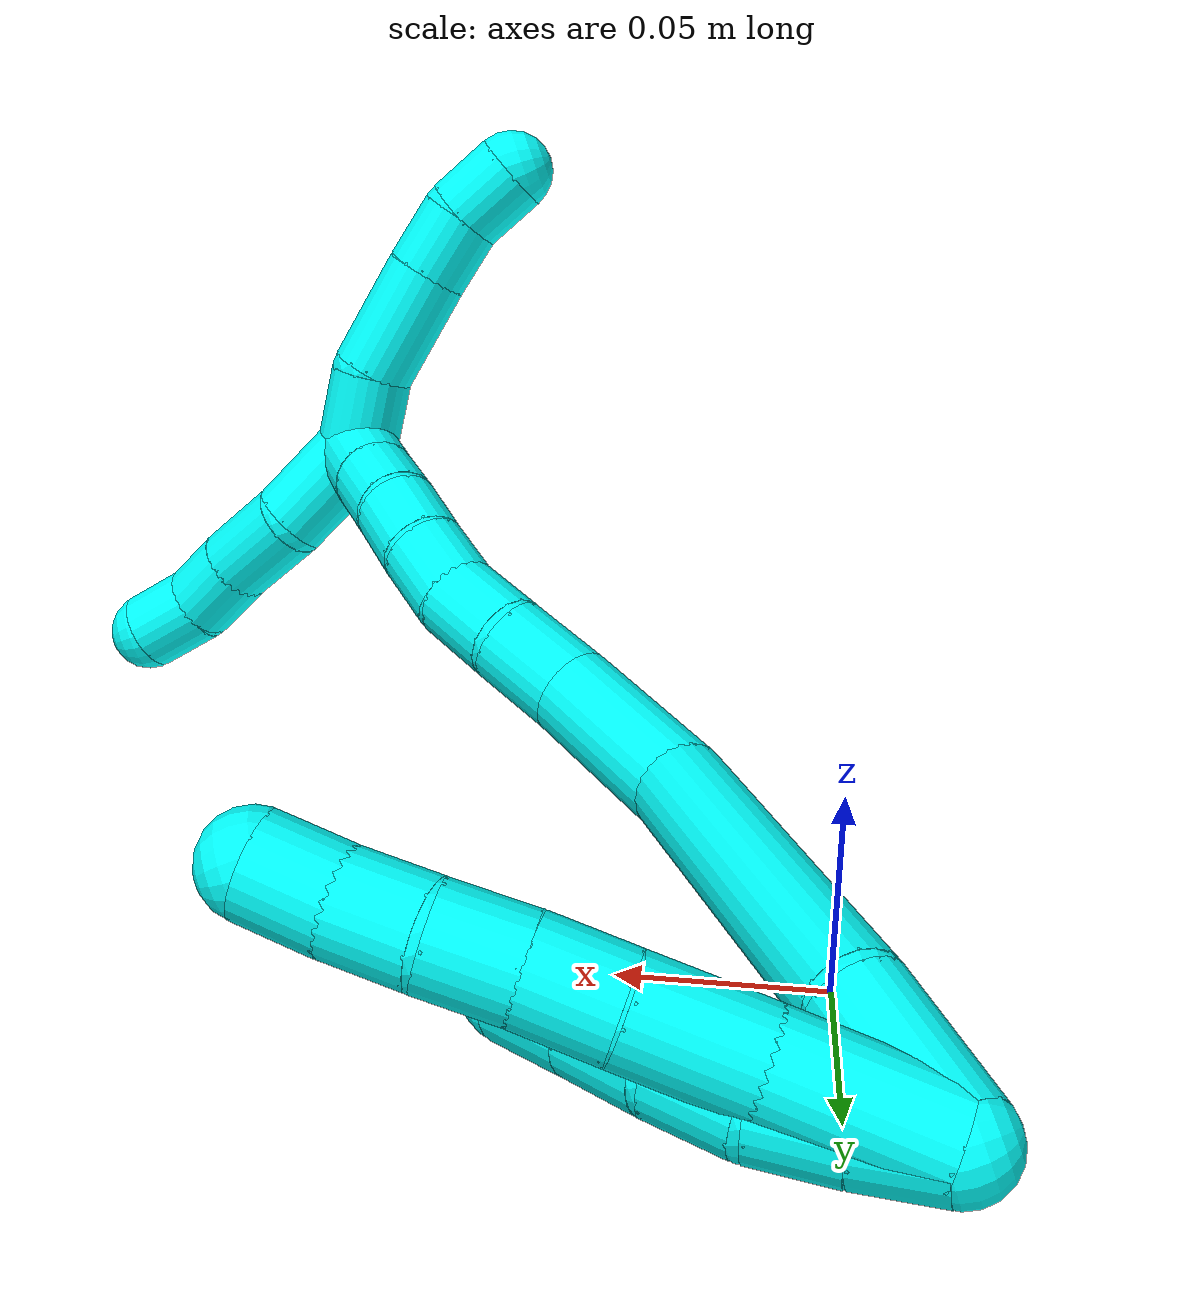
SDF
<sdf version="1.7">
 <world name="default">
  <model name="3">
   <static>0</static>
   <link name="3">
    <collision name="collision-cylinder-e_1_2_8">
     <pose>0.011997 0.00029 -0.015193 -3.12249 0.668336 -3.08659</pose>
     <geometry><cylinder><radius>0.0125</radius><length>0.038721</length></cylinder></geometry>
     <surface>
      <friction><ode><mu>1.16</mu><mu2>1.16</mu2><slip1>0</slip1><slip2>0</slip2></ode></friction>
      <contact><ode><kp>1e+06</kp><kd>1</kd><max_vel>0</max_vel><min_depth>0.001</min_depth></ode></contact>
     </surface>
    </collision>
    <visual name="visual-cylinder-e_1_2_8">
     <pose>0.011997 0.00029 -0.015193 -3.12249 0.668336 -3.08659</pose>
     <geometry><cylinder><radius>0.0125</radius><length>0.038721</length></cylinder></geometry>
     <material><ambient>0.003922 1 0.996078 1</ambient></material>
    </visual>
    <collision name="collision-cylinder-e_2_8_9">
     <pose>0.032949 0.002891 -0.041839 -2.94257 0.653869 -2.56891</pose>
     <geometry><cylinder><radius>0.0125</radius><length>0.029442</length></cylinder></geometry>
     <surface>
      <friction><ode><mu>1.16</mu><mu2>1.16</mu2><slip1>0</slip1><slip2>0</slip2></ode></friction>
      <contact><ode><kp>1e+06</kp><kd>1</kd><max_vel>0</max_vel><min_depth>0.001</min_depth></ode></contact>
     </surface>
    </collision>
    <visual name="visual-cylinder-e_2_8_9">
     <pose>0.032949 0.002891 -0.041839 -2.94257 0.653869 -2.56891</pose>
     <geometry><cylinder><radius>0.0125</radius><length>0.029442</length></cylinder></geometry>
     <material><ambient>0.003922 1 0.996078 1</ambient></material>
    </visual>
    <collision name="collision-cylinder-e_3_9_10">
     <pose>0.048375 0.00604 -0.061531 -3.0401 0.663365 -2.84877</pose>
     <geometry><cylinder><radius>0.0125</radius><length>0.021018</length></cylinder></geometry>
     <surface>
      <friction><ode><mu>1.16</mu><mu2>1.16</mu2><slip1>0</slip1><slip2>0</slip2></ode></friction>
      <contact><ode><kp>1e+06</kp><kd>1</kd><max_vel>0</max_vel><min_depth>0.001</min_depth></ode></contact>
     </surface>
    </collision>
    <visual name="visual-cylinder-e_3_9_10">
     <pose>0.048375 0.00604 -0.061531 -3.0401 0.663365 -2.84877</pose>
     <geometry><cylinder><radius>0.0125</radius><length>0.021018</length></cylinder></geometry>
     <material><ambient>0.003922 1 0.996078 1</ambient></material>
    </visual>
    <collision name="collision-cylinder-e_4_10_11">
     <pose>0.060824 0.008049 -0.078162 -3.00309 0.614356 -2.71106</pose>
     <geometry><cylinder><radius>0.0125</radius><length>0.020743</length></cylinder></geometry>
     <surface>
      <friction><ode><mu>1.16</mu><mu2>1.16</mu2><slip1>0</slip1><slip2>0</slip2></ode></friction>
      <contact><ode><kp>1e+06</kp><kd>1</kd><max_vel>0</max_vel><min_depth>0.001</min_depth></ode></contact>
     </surface>
    </collision>
    <visual name="visual-cylinder-e_4_10_11">
     <pose>0.060824 0.008049 -0.078162 -3.00309 0.614356 -2.71106</pose>
     <geometry><cylinder><radius>0.0125</radius><length>0.020743</length></cylinder></geometry>
     <material><ambient>0.003922 1 0.996078 1</ambient></material>
    </visual>
    <collision name="collision-cylinder-e_5_11_12">
     <pose>0.07271 0.008512 -0.094635 3.05427 0.6296 2.87485</pose>
     <geometry><cylinder><radius>0.0125</radius><length>0.020067</length></cylinder></geometry>
     <surface>
      <friction><ode><mu>1.16</mu><mu2>1.16</mu2><slip1>0</slip1><slip2>0</slip2></ode></friction>
      <contact><ode><kp>1e+06</kp><kd>1</kd><max_vel>0</max_vel><min_depth>0.001</min_depth></ode></contact>
     </surface>
    </collision>
    <visual name="visual-cylinder-e_5_11_12">
     <pose>0.07271 0.008512 -0.094635 3.05427 0.6296 2.87485</pose>
     <geometry><cylinder><radius>0.0125</radius><length>0.020067</length></cylinder></geometry>
     <material><ambient>0.003922 1 0.996078 1</ambient></material>
    </visual>
    <collision name="collision-cylinder-e_6_12_6">
     <pose>0.085038 0.008371 -0.110366 -3.06771 0.696671 -2.93874</pose>
     <geometry><cylinder><radius>0.0125</radius><length>0.020009</length></cylinder></geometry>
     <surface>
      <friction><ode><mu>1.16</mu><mu2>1.16</mu2><slip1>0</slip1><slip2>0</slip2></ode></friction>
      <contact><ode><kp>1e+06</kp><kd>1</kd><max_vel>0</max_vel><min_depth>0.001</min_depth></ode></contact>
     </surface>
    </collision>
    <visual name="visual-cylinder-e_6_12_6">
     <pose>0.085038 0.008371 -0.110366 -3.06771 0.696671 -2.93874</pose>
     <geometry><cylinder><radius>0.0125</radius><length>0.020009</length></cylinder></geometry>
     <material><ambient>0.003922 1 0.996078 1</ambient></material>
    </visual>
    <collision name="collision-cylinder-e_1_2_13">
     <pose>0.004065 -0.001686 -0.00898 2.95596 0.418608 2.31556</pose>
     <geometry><cylinder><radius>0.0125</radius><length>0.02</length></cylinder></geometry>
     <surface>
      <friction><ode><mu>1.16</mu><mu2>1.16</mu2><slip1>0</slip1><slip2>0</slip2></ode></friction>
      <contact><ode><kp>1e+06</kp><kd>1</kd><max_vel>0</max_vel><min_depth>0.001</min_depth></ode></contact>
     </surface>
    </collision>
    <visual name="visual-cylinder-e_1_2_13">
     <pose>0.004065 -0.001686 -0.00898 2.95596 0.418608 2.31556</pose>
     <geometry><cylinder><radius>0.0125</radius><length>0.02</length></cylinder></geometry>
     <material><ambient>0.003922 1 0.996078 1</ambient></material>
    </visual>
    <collision name="collision-cylinder-e_2_13_14">
     <pose>0.012893 -0.004429 -0.026688 3.02111 0.496512 2.67441</pose>
     <geometry><cylinder><radius>0.0125</radius><length>0.02</length></cylinder></geometry>
     <surface>
      <friction><ode><mu>1.16</mu><mu2>1.16</mu2><slip1>0</slip1><slip2>0</slip2></ode></friction>
      <contact><ode><kp>1e+06</kp><kd>1</kd><max_vel>0</max_vel><min_depth>0.001</min_depth></ode></contact>
     </surface>
    </collision>
    <visual name="visual-cylinder-e_2_13_14">
     <pose>0.012893 -0.004429 -0.026688 3.02111 0.496512 2.67441</pose>
     <geometry><cylinder><radius>0.0125</radius><length>0.02</length></cylinder></geometry>
     <material><ambient>0.003922 1 0.996078 1</ambient></material>
    </visual>
    <collision name="collision-cylinder-e_3_14_15">
     <pose>0.023839 -0.007631 -0.042979 2.86526 0.66639 2.37754</pose>
     <geometry><cylinder><radius>0.0125</radius><length>0.02</length></cylinder></geometry>
     <surface>
      <friction><ode><mu>1.16</mu><mu2>1.16</mu2><slip1>0</slip1><slip2>0</slip2></ode></friction>
      <contact><ode><kp>1e+06</kp><kd>1</kd><max_vel>0</max_vel><min_depth>0.001</min_depth></ode></contact>
     </surface>
    </collision>
    <visual name="visual-cylinder-e_3_14_15">
     <pose>0.023839 -0.007631 -0.042979 2.86526 0.66639 2.37754</pose>
     <geometry><cylinder><radius>0.0125</radius><length>0.02</length></cylinder></geometry>
     <material><ambient>0.003922 1 0.996078 1</ambient></material>
    </visual>
    <collision name="collision-cylinder-e_4_15_16">
     <pose>0.035879 -0.014071 -0.057413 2.58283 0.62598 1.69103</pose>
     <geometry><cylinder><radius>0.0125</radius><length>0.02</length></cylinder></geometry>
     <surface>
      <friction><ode><mu>1.16</mu><mu2>1.16</mu2><slip1>0</slip1><slip2>0</slip2></ode></friction>
      <contact><ode><kp>1e+06</kp><kd>1</kd><max_vel>0</max_vel><min_depth>0.001</min_depth></ode></contact>
     </surface>
    </collision>
    <visual name="visual-cylinder-e_4_15_16">
     <pose>0.035879 -0.014071 -0.057413 2.58283 0.62598 1.69103</pose>
     <geometry><cylinder><radius>0.0125</radius><length>0.02</length></cylinder></geometry>
     <material><ambient>0.003922 1 0.996078 1</ambient></material>
    </visual>
    <collision name="collision-cylinder-e_5_16_5">
     <pose>0.047419 -0.022834 -0.071196 2.56788 0.604253 1.62576</pose>
     <geometry><cylinder><radius>0.0125</radius><length>0.02</length></cylinder></geometry>
     <surface>
      <friction><ode><mu>1.16</mu><mu2>1.16</mu2><slip1>0</slip1><slip2>0</slip2></ode></friction>
      <contact><ode><kp>1e+06</kp><kd>1</kd><max_vel>0</max_vel><min_depth>0.001</min_depth></ode></contact>
     </surface>
    </collision>
    <visual name="visual-cylinder-e_5_16_5">
     <pose>0.047419 -0.022834 -0.071196 2.56788 0.604253 1.62576</pose>
     <geometry><cylinder><radius>0.0125</radius><length>0.02</length></cylinder></geometry>
     <material><ambient>0.003922 1 0.996078 1</ambient></material>
    </visual>
    <collision name="collision-cylinder-e_1_2_17">
     <pose>0.015148 -0.009609 -0.004755 2.03035 0.954874 1.38942</pose>
     <geometry><cylinder><radius>0.0125</radius><length>0.037117</length></cylinder></geometry>
     <surface>
      <friction><ode><mu>1.16</mu><mu2>1.16</mu2><slip1>0</slip1><slip2>0</slip2></ode></friction>
      <contact><ode><kp>1e+06</kp><kd>1</kd><max_vel>0</max_vel><min_depth>0.001</min_depth></ode></contact>
     </surface>
    </collision>
    <visual name="visual-cylinder-e_1_2_17">
     <pose>0.015148 -0.009609 -0.004755 2.03035 0.954874 1.38942</pose>
     <geometry><cylinder><radius>0.0125</radius><length>0.037117</length></cylinder></geometry>
     <material><ambient>0.003922 1 0.996078 1</ambient></material>
    </visual>
    <collision name="collision-cylinder-e_2_17_18">
     <pose>0.060104 -0.050477 -0.021106 1.92599 0.729515 1.004</pose>
     <geometry><cylinder><radius>0.0125</radius><length>0.089445</length></cylinder></geometry>
     <surface>
      <friction><ode><mu>1.16</mu><mu2>1.16</mu2><slip1>0</slip1><slip2>0</slip2></ode></friction>
      <contact><ode><kp>1e+06</kp><kd>1</kd><max_vel>0</max_vel><min_depth>0.001</min_depth></ode></contact>
     </surface>
    </collision>
    <visual name="visual-cylinder-e_2_17_18">
     <pose>0.060104 -0.050477 -0.021106 1.92599 0.729515 1.004</pose>
     <geometry><cylinder><radius>0.0125</radius><length>0.089445</length></cylinder></geometry>
     <material><ambient>0.003922 1 0.996078 1</ambient></material>
    </visual>
    <collision name="collision-cylinder-e_3_18_19">
     <pose>0.10752 -0.092912 -0.042678 2.29964 0.865835 1.60248</pose>
     <geometry><cylinder><radius>0.0125</radius><length>0.046237</length></cylinder></geometry>
     <surface>
      <friction><ode><mu>1.16</mu><mu2>1.16</mu2><slip1>0</slip1><slip2>0</slip2></ode></friction>
      <contact><ode><kp>1e+06</kp><kd>1</kd><max_vel>0</max_vel><min_depth>0.001</min_depth></ode></contact>
     </surface>
    </collision>
    <visual name="visual-cylinder-e_3_18_19">
     <pose>0.10752 -0.092912 -0.042678 2.29964 0.865835 1.60248</pose>
     <geometry><cylinder><radius>0.0125</radius><length>0.046237</length></cylinder></geometry>
     <material><ambient>0.003922 1 0.996078 1</ambient></material>
    </visual>
    <collision name="collision-cylinder-e_4_19_20">
     <pose>0.135292 -0.106255 -0.05914 2.81891 0.978655 2.54836</pose>
     <geometry><cylinder><radius>0.0125</radius><length>0.024499</length></cylinder></geometry>
     <surface>
      <friction><ode><mu>1.16</mu><mu2>1.16</mu2><slip1>0</slip1><slip2>0</slip2></ode></friction>
      <contact><ode><kp>1e+06</kp><kd>1</kd><max_vel>0</max_vel><min_depth>0.001</min_depth></ode></contact>
     </surface>
    </collision>
    <visual name="visual-cylinder-e_4_19_20">
     <pose>0.135292 -0.106255 -0.05914 2.81891 0.978655 2.54836</pose>
     <geometry><cylinder><radius>0.0125</radius><length>0.024499</length></cylinder></geometry>
     <material><ambient>0.003922 1 0.996078 1</ambient></material>
    </visual>
    <collision name="collision-cylinder-e_5_20_21">
     <pose>0.154399 -0.112748 -0.071116 2.47446 0.907333 1.90589</pose>
     <geometry><cylinder><radius>0.0125</radius><length>0.022702</length></cylinder></geometry>
     <surface>
      <friction><ode><mu>1.16</mu><mu2>1.16</mu2><slip1>0</slip1><slip2>0</slip2></ode></friction>
      <contact><ode><kp>1e+06</kp><kd>1</kd><max_vel>0</max_vel><min_depth>0.001</min_depth></ode></contact>
     </surface>
    </collision>
    <visual name="visual-cylinder-e_5_20_21">
     <pose>0.154399 -0.112748 -0.071116 2.47446 0.907333 1.90589</pose>
     <geometry><cylinder><radius>0.0125</radius><length>0.022702</length></cylinder></geometry>
     <material><ambient>0.003922 1 0.996078 1</ambient></material>
    </visual>
    <collision name="collision-cylinder-e_6_21_22">
     <pose>0.172369 -0.120095 -0.079672 2.36307 1.1259 1.98885</pose>
     <geometry><cylinder><radius>0.0125</radius><length>0.02</length></cylinder></geometry>
     <surface>
      <friction><ode><mu>1.16</mu><mu2>1.16</mu2><slip1>0</slip1><slip2>0</slip2></ode></friction>
      <contact><ode><kp>1e+06</kp><kd>1</kd><max_vel>0</max_vel><min_depth>0.001</min_depth></ode></contact>
     </surface>
    </collision>
    <visual name="visual-cylinder-e_6_21_22">
     <pose>0.172369 -0.120095 -0.079672 2.36307 1.1259 1.98885</pose>
     <geometry><cylinder><radius>0.0125</radius><length>0.02</length></cylinder></geometry>
     <material><ambient>0.003922 1 0.996078 1</ambient></material>
    </visual>
    <collision name="collision-cylinder-e_7_22_23">
     <pose>0.190002 -0.127468 -0.085379 2.11669 1.03669 1.58453</pose>
     <geometry><cylinder><radius>0.0125</radius><length>0.02</length></cylinder></geometry>
     <surface>
      <friction><ode><mu>1.16</mu><mu2>1.16</mu2><slip1>0</slip1><slip2>0</slip2></ode></friction>
      <contact><ode><kp>1e+06</kp><kd>1</kd><max_vel>0</max_vel><min_depth>0.001</min_depth></ode></contact>
     </surface>
    </collision>
    <visual name="visual-cylinder-e_7_22_23">
     <pose>0.190002 -0.127468 -0.085379 2.11669 1.03669 1.58453</pose>
     <geometry><cylinder><radius>0.0125</radius><length>0.02</length></cylinder></geometry>
     <material><ambient>0.003922 1 0.996078 1</ambient></material>
    </visual>
    <collision name="collision-cylinder-e_8_23_24">
     <pose>0.206218 -0.137721 -0.090721 1.99974 0.86462 1.24596</pose>
     <geometry><cylinder><radius>0.0125</radius><length>0.02</length></cylinder></geometry>
     <surface>
      <friction><ode><mu>1.16</mu><mu2>1.16</mu2><slip1>0</slip1><slip2>0</slip2></ode></friction>
      <contact><ode><kp>1e+06</kp><kd>1</kd><max_vel>0</max_vel><min_depth>0.001</min_depth></ode></contact>
     </surface>
    </collision>
    <visual name="visual-cylinder-e_8_23_24">
     <pose>0.206218 -0.137721 -0.090721 1.99974 0.86462 1.24596</pose>
     <geometry><cylinder><radius>0.0125</radius><length>0.02</length></cylinder></geometry>
     <material><ambient>0.003922 1 0.996078 1</ambient></material>
    </visual>
    <collision name="collision-cylinder-e_9_24_1">
     <pose>0.22142 -0.149678 -0.0958 1.94533 0.862286 1.18763</pose>
     <geometry><cylinder><radius>0.0125</radius><length>0.02</length></cylinder></geometry>
     <surface>
      <friction><ode><mu>1.16</mu><mu2>1.16</mu2><slip1>0</slip1><slip2>0</slip2></ode></friction>
      <contact><ode><kp>1e+06</kp><kd>1</kd><max_vel>0</max_vel><min_depth>0.001</min_depth></ode></contact>
     </surface>
    </collision>
    <visual name="visual-cylinder-e_9_24_1">
     <pose>0.22142 -0.149678 -0.0958 1.94533 0.862286 1.18763</pose>
     <geometry><cylinder><radius>0.0125</radius><length>0.02</length></cylinder></geometry>
     <material><ambient>0.003922 1 0.996078 1</ambient></material>
    </visual>
    <collision name="collision-cylinder-e_1_1_25">
     <pose>0.222959 -0.159257 -0.112153 2.89461 -0.397773 -2.03764</pose>
     <geometry><cylinder><radius>0.0125</radius><length>0.03126</length></cylinder></geometry>
     <surface>
      <friction><ode><mu>1.16</mu><mu2>1.16</mu2><slip1>0</slip1><slip2>0</slip2></ode></friction>
      <contact><ode><kp>1e+06</kp><kd>1</kd><max_vel>0</max_vel><min_depth>0.001</min_depth></ode></contact>
     </surface>
    </collision>
    <visual name="visual-cylinder-e_1_1_25">
     <pose>0.222959 -0.159257 -0.112153 2.89461 -0.397773 -2.03764</pose>
     <geometry><cylinder><radius>0.0125</radius><length>0.03126</length></cylinder></geometry>
     <material><ambient>0.003922 1 0.996078 1</ambient></material>
    </visual>
    <collision name="collision-cylinder-e_2_25_26">
     <pose>0.214734 -0.169173 -0.138016 2.64827 -0.15941 -0.614368</pose>
     <geometry><cylinder><radius>0.0125</radius><length>0.027347</length></cylinder></geometry>
     <surface>
      <friction><ode><mu>1.16</mu><mu2>1.16</mu2><slip1>0</slip1><slip2>0</slip2></ode></friction>
      <contact><ode><kp>1e+06</kp><kd>1</kd><max_vel>0</max_vel><min_depth>0.001</min_depth></ode></contact>
     </surface>
    </collision>
    <visual name="visual-cylinder-e_2_25_26">
     <pose>0.214734 -0.169173 -0.138016 2.64827 -0.15941 -0.614368</pose>
     <geometry><cylinder><radius>0.0125</radius><length>0.027347</length></cylinder></geometry>
     <material><ambient>0.003922 1 0.996078 1</ambient></material>
    </visual>
    <collision name="collision-cylinder-e_3_26_27">
     <pose>0.209801 -0.180044 -0.158757 2.67317 -0.271565 -1.04009</pose>
     <geometry><cylinder><radius>0.0125</radius><length>0.020591</length></cylinder></geometry>
     <surface>
      <friction><ode><mu>1.16</mu><mu2>1.16</mu2><slip1>0</slip1><slip2>0</slip2></ode></friction>
      <contact><ode><kp>1e+06</kp><kd>1</kd><max_vel>0</max_vel><min_depth>0.001</min_depth></ode></contact>
     </surface>
    </collision>
    <visual name="visual-cylinder-e_3_26_27">
     <pose>0.209801 -0.180044 -0.158757 2.67317 -0.271565 -1.04009</pose>
     <geometry><cylinder><radius>0.0125</radius><length>0.020591</length></cylinder></geometry>
     <material><ambient>0.003922 1 0.996078 1</ambient></material>
    </visual>
    <collision name="collision-cylinder-e_4_27_4">
     <pose>0.205927 -0.186819 -0.177689 2.91759 -0.107178 -0.890047</pose>
     <geometry><cylinder><radius>0.0125</radius><length>0.020801</length></cylinder></geometry>
     <surface>
      <friction><ode><mu>1.16</mu><mu2>1.16</mu2><slip1>0</slip1><slip2>0</slip2></ode></friction>
      <contact><ode><kp>1e+06</kp><kd>1</kd><max_vel>0</max_vel><min_depth>0.001</min_depth></ode></contact>
     </surface>
    </collision>
    <visual name="visual-cylinder-e_4_27_4">
     <pose>0.205927 -0.186819 -0.177689 2.91759 -0.107178 -0.890047</pose>
     <geometry><cylinder><radius>0.0125</radius><length>0.020801</length></cylinder></geometry>
     <material><ambient>0.003922 1 0.996078 1</ambient></material>
    </visual>
    <collision name="collision-cylinder-e_1_1_28">
     <pose>0.2382 -0.150396 -0.091636 -0.684209 0.827404 -0.310179</pose>
     <geometry><cylinder><radius>0.0125</radius><length>0.024957</length></cylinder></geometry>
     <surface>
      <friction><ode><mu>1.16</mu><mu2>1.16</mu2><slip1>0</slip1><slip2>0</slip2></ode></friction>
      <contact><ode><kp>1e+06</kp><kd>1</kd><max_vel>0</max_vel><min_depth>0.001</min_depth></ode></contact>
     </surface>
    </collision>
    <visual name="visual-cylinder-e_1_1_28">
     <pose>0.2382 -0.150396 -0.091636 -0.684209 0.827404 -0.310179</pose>
     <geometry><cylinder><radius>0.0125</radius><length>0.024957</length></cylinder></geometry>
     <material><ambient>0.003922 1 0.996078 1</ambient></material>
    </visual>
    <collision name="collision-cylinder-e_2_28_29">
     <pose>0.257577 -0.140051 -0.071926 -0.36342 0.626344 -0.118858</pose>
     <geometry><cylinder><radius>0.0125</radius><length>0.034771</length></cylinder></geometry>
     <surface>
      <friction><ode><mu>1.16</mu><mu2>1.16</mu2><slip1>0</slip1><slip2>0</slip2></ode></friction>
      <contact><ode><kp>1e+06</kp><kd>1</kd><max_vel>0</max_vel><min_depth>0.001</min_depth></ode></contact>
     </surface>
    </collision>
    <visual name="visual-cylinder-e_2_28_29">
     <pose>0.257577 -0.140051 -0.071926 -0.36342 0.626344 -0.118858</pose>
     <geometry><cylinder><radius>0.0125</radius><length>0.034771</length></cylinder></geometry>
     <material><ambient>0.003922 1 0.996078 1</ambient></material>
    </visual>
    <collision name="collision-cylinder-e_3_29_30">
     <pose>0.273301 -0.132129 -0.050808 -0.351343 0.578593 -0.105567</pose>
     <geometry><cylinder><radius>0.0125</radius><length>0.020235</length></cylinder></geometry>
     <surface>
      <friction><ode><mu>1.16</mu><mu2>1.16</mu2><slip1>0</slip1><slip2>0</slip2></ode></friction>
      <contact><ode><kp>1e+06</kp><kd>1</kd><max_vel>0</max_vel><min_depth>0.001</min_depth></ode></contact>
     </surface>
    </collision>
    <visual name="visual-cylinder-e_3_29_30">
     <pose>0.273301 -0.132129 -0.050808 -0.351343 0.578593 -0.105567</pose>
     <geometry><cylinder><radius>0.0125</radius><length>0.020235</length></cylinder></geometry>
     <material><ambient>0.003922 1 0.996078 1</ambient></material>
    </visual>
    <collision name="collision-cylinder-e_4_30_3">
     <pose>0.281987 -0.127259 -0.033548 -0.206979 0.320201 -0.03354</pose>
     <geometry><cylinder><radius>0.0125</radius><length>0.020037</length></cylinder></geometry>
     <surface>
      <friction><ode><mu>1.16</mu><mu2>1.16</mu2><slip1>0</slip1><slip2>0</slip2></ode></friction>
      <contact><ode><kp>1e+06</kp><kd>1</kd><max_vel>0</max_vel><min_depth>0.001</min_depth></ode></contact>
     </surface>
    </collision>
    <visual name="visual-cylinder-e_4_30_3">
     <pose>0.281987 -0.127259 -0.033548 -0.206979 0.320201 -0.03354</pose>
     <geometry><cylinder><radius>0.0125</radius><length>0.020037</length></cylinder></geometry>
     <material><ambient>0.003922 1 0.996078 1</ambient></material>
    </visual>
    <collision name="collision-sphere-3">
     <pose>0.285141 -0.125305 -0.024242 0 -0 0</pose>
     <geometry><sphere><radius>0.0125</radius></sphere></geometry>
     <surface>
      <friction><ode><mu>1.16</mu><mu2>1.16</mu2><slip1>0</slip1><slip2>0</slip2></ode></friction>
      <contact><ode><kp>1e+06</kp><kd>1</kd><max_vel>0</max_vel><min_depth>0.001</min_depth></ode></contact>
     </surface>
    </collision>
    <visual name="visual-sphere-3">
     <pose>0.285141 -0.125305 -0.024242 0 -0 0</pose>
     <geometry><sphere><radius>0.0125</radius></sphere></geometry>
     <material><ambient>0.003922 1 0.996078 1</ambient></material>
    </visual>
    <collision name="collision-sphere-30">
     <pose>0.278834 -0.129213 -0.042854 0 -0 0</pose>
     <geometry><sphere><radius>0.0125</radius></sphere></geometry>
     <surface>
      <friction><ode><mu>1.16</mu><mu2>1.16</mu2><slip1>0</slip1><slip2>0</slip2></ode></friction>
      <contact><ode><kp>1e+06</kp><kd>1</kd><max_vel>0</max_vel><min_depth>0.001</min_depth></ode></contact>
     </surface>
    </collision>
    <visual name="visual-sphere-30">
     <pose>0.278834 -0.129213 -0.042854 0 -0 0</pose>
     <geometry><sphere><radius>0.0125</radius></sphere></geometry>
     <material><ambient>0.003922 1 0.996078 1</ambient></material>
    </visual>
    <collision name="collision-sphere-29">
     <pose>0.267768 -0.135044 -0.058761 0 -0 0</pose>
     <geometry><sphere><radius>0.0125</radius></sphere></geometry>
     <surface>
      <friction><ode><mu>1.16</mu><mu2>1.16</mu2><slip1>0</slip1><slip2>0</slip2></ode></friction>
      <contact><ode><kp>1e+06</kp><kd>1</kd><max_vel>0</max_vel><min_depth>0.001</min_depth></ode></contact>
     </surface>
    </collision>
    <visual name="visual-sphere-29">
     <pose>0.267768 -0.135044 -0.058761 0 -0 0</pose>
     <geometry><sphere><radius>0.0125</radius></sphere></geometry>
     <material><ambient>0.003922 1 0.996078 1</ambient></material>
    </visual>
    <collision name="collision-sphere-28">
     <pose>0.247386 -0.145058 -0.085092 0 -0 0</pose>
     <geometry><sphere><radius>0.0125</radius></sphere></geometry>
     <surface>
      <friction><ode><mu>1.16</mu><mu2>1.16</mu2><slip1>0</slip1><slip2>0</slip2></ode></friction>
      <contact><ode><kp>1e+06</kp><kd>1</kd><max_vel>0</max_vel><min_depth>0.001</min_depth></ode></contact>
     </surface>
    </collision>
    <visual name="visual-sphere-28">
     <pose>0.247386 -0.145058 -0.085092 0 -0 0</pose>
     <geometry><sphere><radius>0.0125</radius></sphere></geometry>
     <material><ambient>0.003922 1 0.996078 1</ambient></material>
    </visual>
    <collision name="collision-sphere-4">
     <pose>0.204815 -0.189116 -0.187772 0 -0 0</pose>
     <geometry><sphere><radius>0.0125</radius></sphere></geometry>
     <surface>
      <friction><ode><mu>1.16</mu><mu2>1.16</mu2><slip1>0</slip1><slip2>0</slip2></ode></friction>
      <contact><ode><kp>1e+06</kp><kd>1</kd><max_vel>0</max_vel><min_depth>0.001</min_depth></ode></contact>
     </surface>
    </collision>
    <visual name="visual-sphere-4">
     <pose>0.204815 -0.189116 -0.187772 0 -0 0</pose>
     <geometry><sphere><radius>0.0125</radius></sphere></geometry>
     <material><ambient>0.003922 1 0.996078 1</ambient></material>
    </visual>
    <collision name="collision-sphere-27">
     <pose>0.20704 -0.184522 -0.167607 0 -0 0</pose>
     <geometry><sphere><radius>0.0125</radius></sphere></geometry>
     <surface>
      <friction><ode><mu>1.16</mu><mu2>1.16</mu2><slip1>0</slip1><slip2>0</slip2></ode></friction>
      <contact><ode><kp>1e+06</kp><kd>1</kd><max_vel>0</max_vel><min_depth>0.001</min_depth></ode></contact>
     </surface>
    </collision>
    <visual name="visual-sphere-27">
     <pose>0.20704 -0.184522 -0.167607 0 -0 0</pose>
     <geometry><sphere><radius>0.0125</radius></sphere></geometry>
     <material><ambient>0.003922 1 0.996078 1</ambient></material>
    </visual>
    <collision name="collision-sphere-26">
     <pose>0.212563 -0.175566 -0.149907 0 -0 0</pose>
     <geometry><sphere><radius>0.0125</radius></sphere></geometry>
     <surface>
      <friction><ode><mu>1.16</mu><mu2>1.16</mu2><slip1>0</slip1><slip2>0</slip2></ode></friction>
      <contact><ode><kp>1e+06</kp><kd>1</kd><max_vel>0</max_vel><min_depth>0.001</min_depth></ode></contact>
     </surface>
    </collision>
    <visual name="visual-sphere-26">
     <pose>0.212563 -0.175566 -0.149907 0 -0 0</pose>
     <geometry><sphere><radius>0.0125</radius></sphere></geometry>
     <material><ambient>0.003922 1 0.996078 1</ambient></material>
    </visual>
    <collision name="collision-sphere-25">
     <pose>0.216904 -0.16278 -0.126126 0 -0 0</pose>
     <geometry><sphere><radius>0.0125</radius></sphere></geometry>
     <surface>
      <friction><ode><mu>1.16</mu><mu2>1.16</mu2><slip1>0</slip1><slip2>0</slip2></ode></friction>
      <contact><ode><kp>1e+06</kp><kd>1</kd><max_vel>0</max_vel><min_depth>0.001</min_depth></ode></contact>
     </surface>
    </collision>
    <visual name="visual-sphere-25">
     <pose>0.216904 -0.16278 -0.126126 0 -0 0</pose>
     <geometry><sphere><radius>0.0125</radius></sphere></geometry>
     <material><ambient>0.003922 1 0.996078 1</ambient></material>
    </visual>
    <collision name="collision-sphere-1">
     <pose>0.229013 -0.155734 -0.098181 0 -0 0</pose>
     <geometry><sphere><radius>0.0125</radius></sphere></geometry>
     <surface>
      <friction><ode><mu>1.16</mu><mu2>1.16</mu2><slip1>0</slip1><slip2>0</slip2></ode></friction>
      <contact><ode><kp>1e+06</kp><kd>1</kd><max_vel>0</max_vel><min_depth>0.001</min_depth></ode></contact>
     </surface>
    </collision>
    <visual name="visual-sphere-1">
     <pose>0.229013 -0.155734 -0.098181 0 -0 0</pose>
     <geometry><sphere><radius>0.0125</radius></sphere></geometry>
     <material><ambient>0.003922 1 0.996078 1</ambient></material>
    </visual>
    <collision name="collision-sphere-24">
     <pose>0.213827 -0.143622 -0.09342 0 -0 0</pose>
     <geometry><sphere><radius>0.0125</radius></sphere></geometry>
     <surface>
      <friction><ode><mu>1.16</mu><mu2>1.16</mu2><slip1>0</slip1><slip2>0</slip2></ode></friction>
      <contact><ode><kp>1e+06</kp><kd>1</kd><max_vel>0</max_vel><min_depth>0.001</min_depth></ode></contact>
     </surface>
    </collision>
    <visual name="visual-sphere-24">
     <pose>0.213827 -0.143622 -0.09342 0 -0 0</pose>
     <geometry><sphere><radius>0.0125</radius></sphere></geometry>
     <material><ambient>0.003922 1 0.996078 1</ambient></material>
    </visual>
    <collision name="collision-sphere-23">
     <pose>0.19861 -0.131819 -0.088022 0 -0 0</pose>
     <geometry><sphere><radius>0.0125</radius></sphere></geometry>
     <surface>
      <friction><ode><mu>1.16</mu><mu2>1.16</mu2><slip1>0</slip1><slip2>0</slip2></ode></friction>
      <contact><ode><kp>1e+06</kp><kd>1</kd><max_vel>0</max_vel><min_depth>0.001</min_depth></ode></contact>
     </surface>
    </collision>
    <visual name="visual-sphere-23">
     <pose>0.19861 -0.131819 -0.088022 0 -0 0</pose>
     <geometry><sphere><radius>0.0125</radius></sphere></geometry>
     <material><ambient>0.003922 1 0.996078 1</ambient></material>
    </visual>
    <collision name="collision-sphere-22">
     <pose>0.181395 -0.123118 -0.082736 0 -0 0</pose>
     <geometry><sphere><radius>0.0125</radius></sphere></geometry>
     <surface>
      <friction><ode><mu>1.16</mu><mu2>1.16</mu2><slip1>0</slip1><slip2>0</slip2></ode></friction>
      <contact><ode><kp>1e+06</kp><kd>1</kd><max_vel>0</max_vel><min_depth>0.001</min_depth></ode></contact>
     </surface>
    </collision>
    <visual name="visual-sphere-22">
     <pose>0.181395 -0.123118 -0.082736 0 -0 0</pose>
     <geometry><sphere><radius>0.0125</radius></sphere></geometry>
     <material><ambient>0.003922 1 0.996078 1</ambient></material>
    </visual>
    <collision name="collision-sphere-21">
     <pose>0.163342 -0.117073 -0.076608 0 -0 0</pose>
     <geometry><sphere><radius>0.0125</radius></sphere></geometry>
     <surface>
      <friction><ode><mu>1.16</mu><mu2>1.16</mu2><slip1>0</slip1><slip2>0</slip2></ode></friction>
      <contact><ode><kp>1e+06</kp><kd>1</kd><max_vel>0</max_vel><min_depth>0.001</min_depth></ode></contact>
     </surface>
    </collision>
    <visual name="visual-sphere-21">
     <pose>0.163342 -0.117073 -0.076608 0 -0 0</pose>
     <geometry><sphere><radius>0.0125</radius></sphere></geometry>
     <material><ambient>0.003922 1 0.996078 1</ambient></material>
    </visual>
    <collision name="collision-sphere-12">
     <pose>0.078618 0.007804 -0.102714 0 -0 0</pose>
     <geometry><sphere><radius>0.0125</radius></sphere></geometry>
     <surface>
      <friction><ode><mu>1.16</mu><mu2>1.16</mu2><slip1>0</slip1><slip2>0</slip2></ode></friction>
      <contact><ode><kp>1e+06</kp><kd>1</kd><max_vel>0</max_vel><min_depth>0.001</min_depth></ode></contact>
     </surface>
    </collision>
    <visual name="visual-sphere-12">
     <pose>0.078618 0.007804 -0.102714 0 -0 0</pose>
     <geometry><sphere><radius>0.0125</radius></sphere></geometry>
     <material><ambient>0.003922 1 0.996078 1</ambient></material>
    </visual>
    <collision name="collision-sphere-11">
     <pose>0.066802 0.009219 -0.086556 0 -0 0</pose>
     <geometry><sphere><radius>0.0125</radius></sphere></geometry>
     <surface>
      <friction><ode><mu>1.16</mu><mu2>1.16</mu2><slip1>0</slip1><slip2>0</slip2></ode></friction>
      <contact><ode><kp>1e+06</kp><kd>1</kd><max_vel>0</max_vel><min_depth>0.001</min_depth></ode></contact>
     </surface>
    </collision>
    <visual name="visual-sphere-11">
     <pose>0.066802 0.009219 -0.086556 0 -0 0</pose>
     <geometry><sphere><radius>0.0125</radius></sphere></geometry>
     <material><ambient>0.003922 1 0.996078 1</ambient></material>
    </visual>
    <collision name="collision-sphere-10">
     <pose>0.054846 0.006879 -0.069768 0 -0 0</pose>
     <geometry><sphere><radius>0.0125</radius></sphere></geometry>
     <surface>
      <friction><ode><mu>1.16</mu><mu2>1.16</mu2><slip1>0</slip1><slip2>0</slip2></ode></friction>
      <contact><ode><kp>1e+06</kp><kd>1</kd><max_vel>0</max_vel><min_depth>0.001</min_depth></ode></contact>
     </surface>
    </collision>
    <visual name="visual-sphere-10">
     <pose>0.054846 0.006879 -0.069768 0 -0 0</pose>
     <geometry><sphere><radius>0.0125</radius></sphere></geometry>
     <material><ambient>0.003922 1 0.996078 1</ambient></material>
    </visual>
    <collision name="collision-sphere-9">
     <pose>0.041903 0.005201 -0.053293 0 -0 0</pose>
     <geometry><sphere><radius>0.0125</radius></sphere></geometry>
     <surface>
      <friction><ode><mu>1.16</mu><mu2>1.16</mu2><slip1>0</slip1><slip2>0</slip2></ode></friction>
      <contact><ode><kp>1e+06</kp><kd>1</kd><max_vel>0</max_vel><min_depth>0.001</min_depth></ode></contact>
     </surface>
    </collision>
    <visual name="visual-sphere-9">
     <pose>0.041903 0.005201 -0.053293 0 -0 0</pose>
     <geometry><sphere><radius>0.0125</radius></sphere></geometry>
     <material><ambient>0.003922 1 0.996078 1</ambient></material>
    </visual>
    <collision name="collision-sphere-2">
     <geometry><sphere><radius>0.0125</radius></sphere></geometry>
     <surface>
      <friction><ode><mu>1.16</mu><mu2>1.16</mu2><slip1>0</slip1><slip2>0</slip2></ode></friction>
      <contact><ode><kp>1e+06</kp><kd>1</kd><max_vel>0</max_vel><min_depth>0.001</min_depth></ode></contact>
     </surface>
    </collision>
    <visual name="visual-sphere-2">
     <geometry><sphere><radius>0.0125</radius></sphere></geometry>
     <material><ambient>0.003922 1 0.996078 1</ambient></material>
    </visual>
    <collision name="collision-sphere-19">
     <pose>0.125128 -0.104087 -0.052656 0 -0 0</pose>
     <geometry><sphere><radius>0.0125</radius></sphere></geometry>
     <surface>
      <friction><ode><mu>1.16</mu><mu2>1.16</mu2><slip1>0</slip1><slip2>0</slip2></ode></friction>
      <contact><ode><kp>1e+06</kp><kd>1</kd><max_vel>0</max_vel><min_depth>0.001</min_depth></ode></contact>
     </surface>
    </collision>
    <visual name="visual-sphere-19">
     <pose>0.125128 -0.104087 -0.052656 0 -0 0</pose>
     <geometry><sphere><radius>0.0125</radius></sphere></geometry>
     <material><ambient>0.003922 1 0.996078 1</ambient></material>
    </visual>
    <collision name="collision-sphere-8">
     <pose>0.023995 0.00058 -0.030385 0 -0 0</pose>
     <geometry><sphere><radius>0.0125</radius></sphere></geometry>
     <surface>
      <friction><ode><mu>1.16</mu><mu2>1.16</mu2><slip1>0</slip1><slip2>0</slip2></ode></friction>
      <contact><ode><kp>1e+06</kp><kd>1</kd><max_vel>0</max_vel><min_depth>0.001</min_depth></ode></contact>
     </surface>
    </collision>
    <visual name="visual-sphere-8">
     <pose>0.023995 0.00058 -0.030385 0 -0 0</pose>
     <geometry><sphere><radius>0.0125</radius></sphere></geometry>
     <material><ambient>0.003922 1 0.996078 1</ambient></material>
    </visual>
    <collision name="collision-sphere-6">
     <pose>0.091457 0.008937 -0.118018 0 -0 0</pose>
     <geometry><sphere><radius>0.0125</radius></sphere></geometry>
     <surface>
      <friction><ode><mu>1.16</mu><mu2>1.16</mu2><slip1>0</slip1><slip2>0</slip2></ode></friction>
      <contact><ode><kp>1e+06</kp><kd>1</kd><max_vel>0</max_vel><min_depth>0.001</min_depth></ode></contact>
     </surface>
    </collision>
    <visual name="visual-sphere-6">
     <pose>0.091457 0.008937 -0.118018 0 -0 0</pose>
     <geometry><sphere><radius>0.0125</radius></sphere></geometry>
     <material><ambient>0.003922 1 0.996078 1</ambient></material>
    </visual>
    <collision name="collision-sphere-13">
     <pose>0.00813 -0.003373 -0.017959 0 -0 0</pose>
     <geometry><sphere><radius>0.0125</radius></sphere></geometry>
     <surface>
      <friction><ode><mu>1.16</mu><mu2>1.16</mu2><slip1>0</slip1><slip2>0</slip2></ode></friction>
      <contact><ode><kp>1e+06</kp><kd>1</kd><max_vel>0</max_vel><min_depth>0.001</min_depth></ode></contact>
     </surface>
    </collision>
    <visual name="visual-sphere-13">
     <pose>0.00813 -0.003373 -0.017959 0 -0 0</pose>
     <geometry><sphere><radius>0.0125</radius></sphere></geometry>
     <material><ambient>0.003922 1 0.996078 1</ambient></material>
    </visual>
    <collision name="collision-sphere-14">
     <pose>0.017657 -0.005486 -0.035417 0 -0 0</pose>
     <geometry><sphere><radius>0.0125</radius></sphere></geometry>
     <surface>
      <friction><ode><mu>1.16</mu><mu2>1.16</mu2><slip1>0</slip1><slip2>0</slip2></ode></friction>
      <contact><ode><kp>1e+06</kp><kd>1</kd><max_vel>0</max_vel><min_depth>0.001</min_depth></ode></contact>
     </surface>
    </collision>
    <visual name="visual-sphere-14">
     <pose>0.017657 -0.005486 -0.035417 0 -0 0</pose>
     <geometry><sphere><radius>0.0125</radius></sphere></geometry>
     <material><ambient>0.003922 1 0.996078 1</ambient></material>
    </visual>
    <collision name="collision-sphere-15">
     <pose>0.03002 -0.009775 -0.050541 0 -0 0</pose>
     <geometry><sphere><radius>0.0125</radius></sphere></geometry>
     <surface>
      <friction><ode><mu>1.16</mu><mu2>1.16</mu2><slip1>0</slip1><slip2>0</slip2></ode></friction>
      <contact><ode><kp>1e+06</kp><kd>1</kd><max_vel>0</max_vel><min_depth>0.001</min_depth></ode></contact>
     </surface>
    </collision>
    <visual name="visual-sphere-15">
     <pose>0.03002 -0.009775 -0.050541 0 -0 0</pose>
     <geometry><sphere><radius>0.0125</radius></sphere></geometry>
     <material><ambient>0.003922 1 0.996078 1</ambient></material>
    </visual>
    <collision name="collision-sphere-16">
     <pose>0.041738 -0.018368 -0.064284 0 -0 0</pose>
     <geometry><sphere><radius>0.0125</radius></sphere></geometry>
     <surface>
      <friction><ode><mu>1.16</mu><mu2>1.16</mu2><slip1>0</slip1><slip2>0</slip2></ode></friction>
      <contact><ode><kp>1e+06</kp><kd>1</kd><max_vel>0</max_vel><min_depth>0.001</min_depth></ode></contact>
     </surface>
    </collision>
    <visual name="visual-sphere-16">
     <pose>0.041738 -0.018368 -0.064284 0 -0 0</pose>
     <geometry><sphere><radius>0.0125</radius></sphere></geometry>
     <material><ambient>0.003922 1 0.996078 1</ambient></material>
    </visual>
    <collision name="collision-sphere-5">
     <pose>0.053101 -0.0273 -0.078108 0 -0 0</pose>
     <geometry><sphere><radius>0.0125</radius></sphere></geometry>
     <surface>
      <friction><ode><mu>1.16</mu><mu2>1.16</mu2><slip1>0</slip1><slip2>0</slip2></ode></friction>
      <contact><ode><kp>1e+06</kp><kd>1</kd><max_vel>0</max_vel><min_depth>0.001</min_depth></ode></contact>
     </surface>
    </collision>
    <visual name="visual-sphere-5">
     <pose>0.053101 -0.0273 -0.078108 0 -0 0</pose>
     <geometry><sphere><radius>0.0125</radius></sphere></geometry>
     <material><ambient>0.003922 1 0.996078 1</ambient></material>
    </visual>
    <collision name="collision-sphere-17">
     <pose>0.030296 -0.019218 -0.009511 0 -0 0</pose>
     <geometry><sphere><radius>0.0125</radius></sphere></geometry>
     <surface>
      <friction><ode><mu>1.16</mu><mu2>1.16</mu2><slip1>0</slip1><slip2>0</slip2></ode></friction>
      <contact><ode><kp>1e+06</kp><kd>1</kd><max_vel>0</max_vel><min_depth>0.001</min_depth></ode></contact>
     </surface>
    </collision>
    <visual name="visual-sphere-17">
     <pose>0.030296 -0.019218 -0.009511 0 -0 0</pose>
     <geometry><sphere><radius>0.0125</radius></sphere></geometry>
     <material><ambient>0.003922 1 0.996078 1</ambient></material>
    </visual>
    <collision name="collision-sphere-18">
     <pose>0.089912 -0.081737 -0.032701 0 -0 0</pose>
     <geometry><sphere><radius>0.0125</radius></sphere></geometry>
     <surface>
      <friction><ode><mu>1.16</mu><mu2>1.16</mu2><slip1>0</slip1><slip2>0</slip2></ode></friction>
      <contact><ode><kp>1e+06</kp><kd>1</kd><max_vel>0</max_vel><min_depth>0.001</min_depth></ode></contact>
     </surface>
    </collision>
    <visual name="visual-sphere-18">
     <pose>0.089912 -0.081737 -0.032701 0 -0 0</pose>
     <geometry><sphere><radius>0.0125</radius></sphere></geometry>
     <material><ambient>0.003922 1 0.996078 1</ambient></material>
    </visual>
    <collision name="collision-sphere-20">
     <pose>0.145456 -0.108423 -0.065624 0 -0 0</pose>
     <geometry><sphere><radius>0.0125</radius></sphere></geometry>
     <surface>
      <friction><ode><mu>1.16</mu><mu2>1.16</mu2><slip1>0</slip1><slip2>0</slip2></ode></friction>
      <contact><ode><kp>1e+06</kp><kd>1</kd><max_vel>0</max_vel><min_depth>0.001</min_depth></ode></contact>
     </surface>
    </collision>
    <visual name="visual-sphere-20">
     <pose>0.145456 -0.108423 -0.065624 0 -0 0</pose>
     <geometry><sphere><radius>0.0125</radius></sphere></geometry>
     <material><ambient>0.003922 1 0.996078 1</ambient></material>
    </visual>
    <inertial>
     <pose>0.12055 -0.075145 -0.063804 0 -0 0</pose>
     <mass>0.75</mass>
     <inertia><ixx>0.0001</ixx><ixy>0</ixy><ixz>0</ixz><iyy>0.0001</iyy><iyz>0</iyz><izz>-4.6e-05</izz></inertia>
    </inertial>
   </link>
   <pose>-0.019853 0.070479 0.013166 0.985127 -0.902047 -0.950848</pose>
  </model>
 </world>
</sdf>
